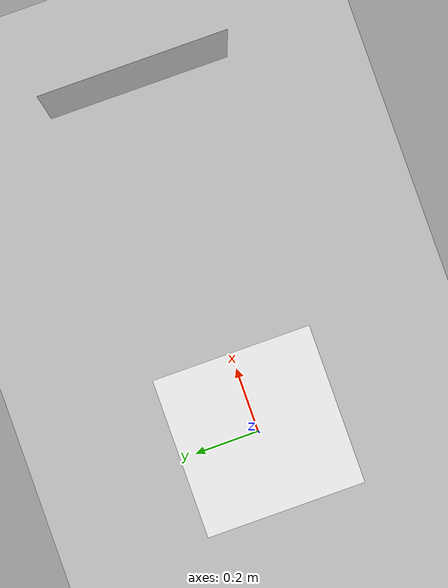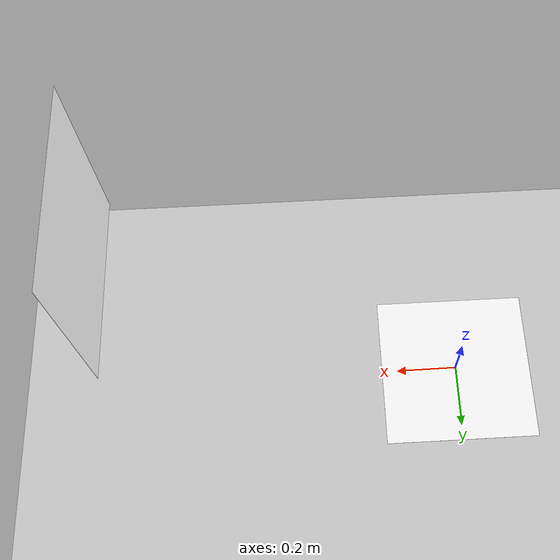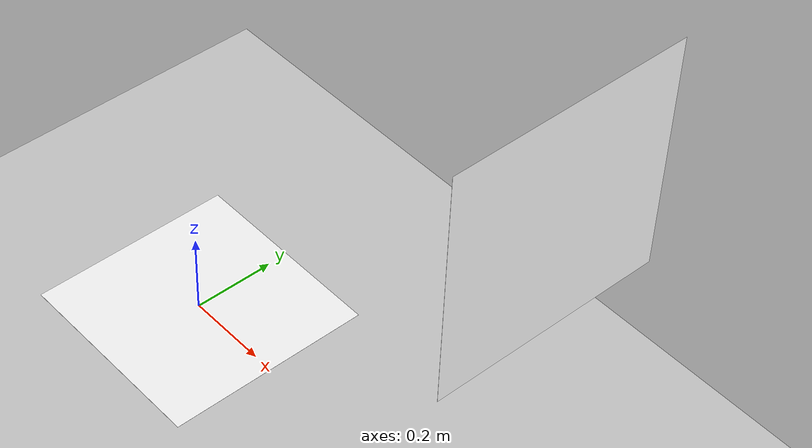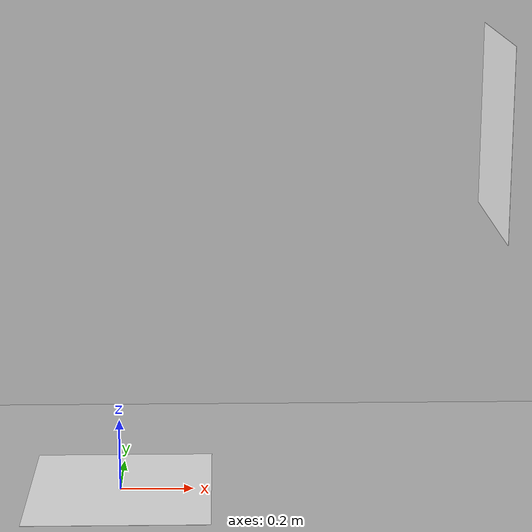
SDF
<?xml version="1.0" encoding="UTF-8"?>
<sdf version="1.9">
  <world name="aruco_dual_ids">
    <physics type="ode">
      <max_step_size>0.004</max_step_size>
      <real_time_factor>1.0</real_time_factor>
      <real_time_update_rate>250</real_time_update_rate>
    </physics>
    <gravity>0 0 -9.8</gravity>
    <magnetic_field>6e-06 2.3e-05 -4.2e-05</magnetic_field>
    <atmosphere type="adiabatic"/>
    <scene>
      <grid>false</grid>
      <ambient>0.4 0.4 0.4 1</ambient>
      <background>0.7 0.7 0.7 1</background>
      <shadows>true</shadows>
    </scene>
    <model name="ground_plane">
      <static>true</static>
      <link name="link">
        <collision name="collision">
          <geometry>
            <plane>
              <normal>0 0 1</normal>
              <size>1 1</size>
            </plane>
          </geometry>
          <surface>
            <friction>
              <ode/>
            </friction>
            <bounce/>
            <contact/>
          </surface>
        </collision>
        <visual name="visual">
          <geometry>
            <plane>
              <normal>0 0 1</normal>
              <size>100 100</size>
            </plane>
          </geometry>
          <material>
            <ambient>0.8 0.8 0.8 1</ambient>
            <diffuse>0.8 0.8 0.8 1</diffuse>
            <specular>0.8 0.8 0.8 1</specular>
          </material>
        </visual>
        <pose>0 0 0 0 -0 0</pose>
        <inertial>
          <pose>0 0 0 0 -0 0</pose>
          <mass>1</mass>
          <inertia>
            <ixx>1</ixx>
            <ixy>0</ixy>
            <ixz>0</ixz>
            <iyy>1</iyy>
            <iyz>0</iyz>
            <izz>1</izz>
          </inertia>
        </inertial>
        <enable_wind>false</enable_wind>
      </link>
      <pose>0 0 0 0 -0 0</pose>
      <self_collide>false</self_collide>
    </model>
    <light name="sunUTC" type="directional">
      <pose>0 0 500 0 -0 0</pose>
      <cast_shadows>true</cast_shadows>
      <intensity>1</intensity>
      <direction>0.001 0.625 -0.78</direction>
      <diffuse>0.904 0.904 0.904 1</diffuse>
      <specular>0.271 0.271 0.271 1</specular>
      <attenuation>
        <range>2000</range>
        <linear>0</linear>
        <constant>1</constant>
        <quadratic>0</quadratic>
      </attenuation>
      <spot>
        <inner_angle>0</inner_angle>
        <outer_angle>0</outer_angle>
        <falloff>0</falloff>
      </spot>
    </light>
    <spherical_coordinates>
      <surface_model>EARTH_WGS84</surface_model>
      <world_frame_orientation>ENU</world_frame_orientation>
      <latitude_deg>47.397971057728974</latitude_deg>
      <longitude_deg> 8.546163739800146</longitude_deg>
      <elevation>0</elevation>
    </spherical_coordinates>

    <include>
      <name>aruco_marker_ground_id0</name>
      <uri>model://aruco_marker_id0</uri>
      <pose>0 0 0.002 0 0 0</pose>
    </include>

    <!-- Perpendicular marker positioned 1 m above and 1 m (positive X) in front of the original marker -->
    <include>
      <name>aruco_marker_vertical_id1</name>
      <uri>model://aruco_marker_id1</uri>
      <pose>1.0 0 1.0 0 -1.57079632679 0</pose>
    </include>
  </world>
</sdf>

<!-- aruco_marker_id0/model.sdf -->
<sdf version="1.9">
  <model name="aruco_marker_id0">
    <static>true</static>
    <link name="aruco_tag_link">
      <visual name="aruco_visual">
        <geometry>
          <plane>
            <normal>0 0 1</normal>
            <size>0.5 0.5</size>
          </plane>
        </geometry>
        <material>
          <diffuse>1 1 1 1</diffuse>
          <specular>0.4 0.4 0.4 1</specular>
          <pbr>
            <metal>
              <albedo_map>model://aruco_marker_id0/materials/textures/aruco_id0.png</albedo_map>
            </metal>
          </pbr>
        </material>
      </visual>
      <collision name="aruco_collision">
        <geometry>
          <plane>
            <normal>0 0 1</normal>
            <size>0.5 0.5</size>
          </plane>
        </geometry>
      </collision>
    </link>
  </model>
</sdf>

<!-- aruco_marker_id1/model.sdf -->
<sdf version="1.9">
  <model name="aruco_marker_id1">
    <static>true</static>
    <link name="aruco_tag_link">
      <visual name="aruco_visual">
        <geometry>
          <plane>
            <normal>0 0 1</normal>
            <size>0.5 0.5</size>
          </plane>
        </geometry>
        <material>
          <diffuse>1 1 1 1</diffuse>
          <specular>0.4 0.4 0.4 1</specular>
          <pbr>
            <metal>
              <albedo_map>model://aruco_marker_id1/materials/textures/aruco_id1.png</albedo_map>
            </metal>
          </pbr>
        </material>
      </visual>
      <collision name="aruco_collision">
        <geometry>
          <plane>
            <normal>0 0 1</normal>
            <size>0.5 0.5</size>
          </plane>
        </geometry>
      </collision>
    </link>
  </model>
</sdf>
